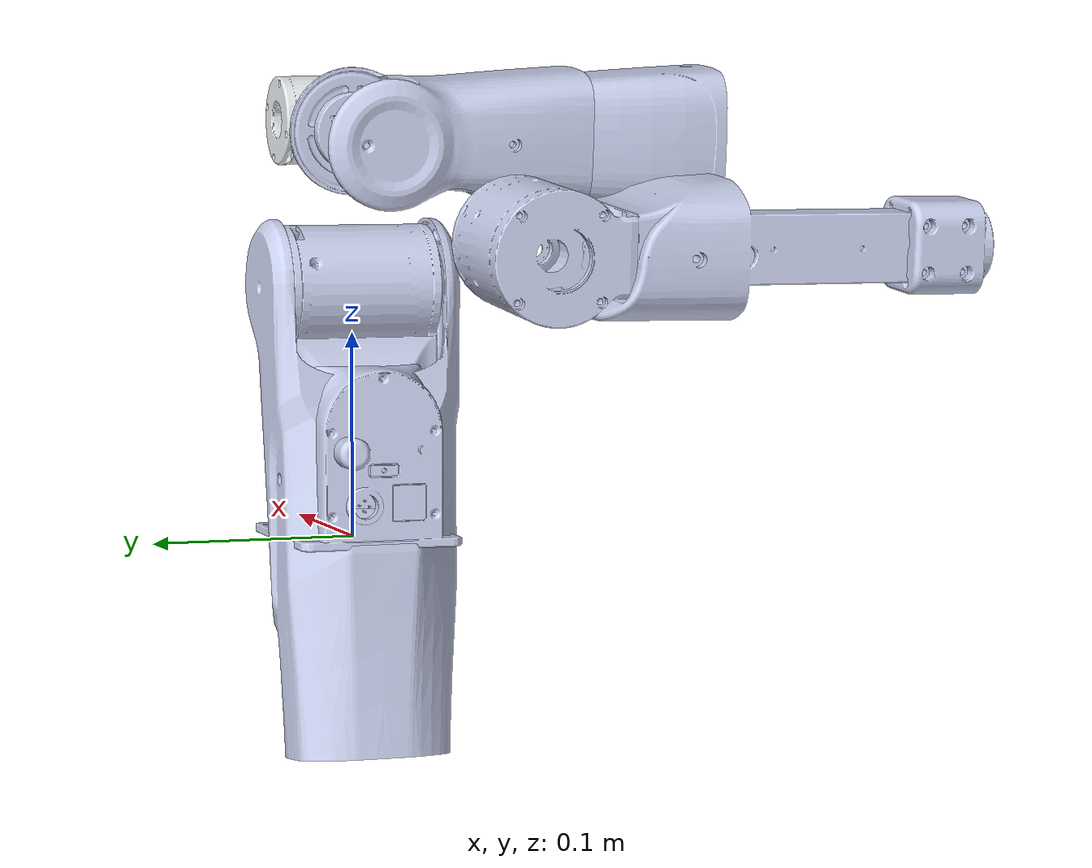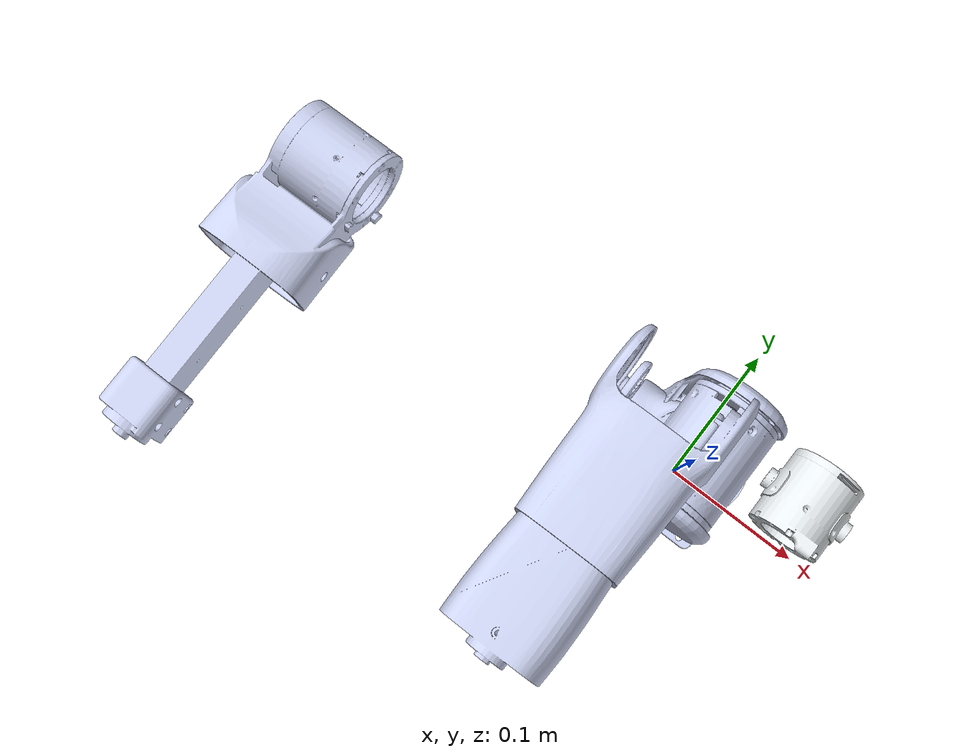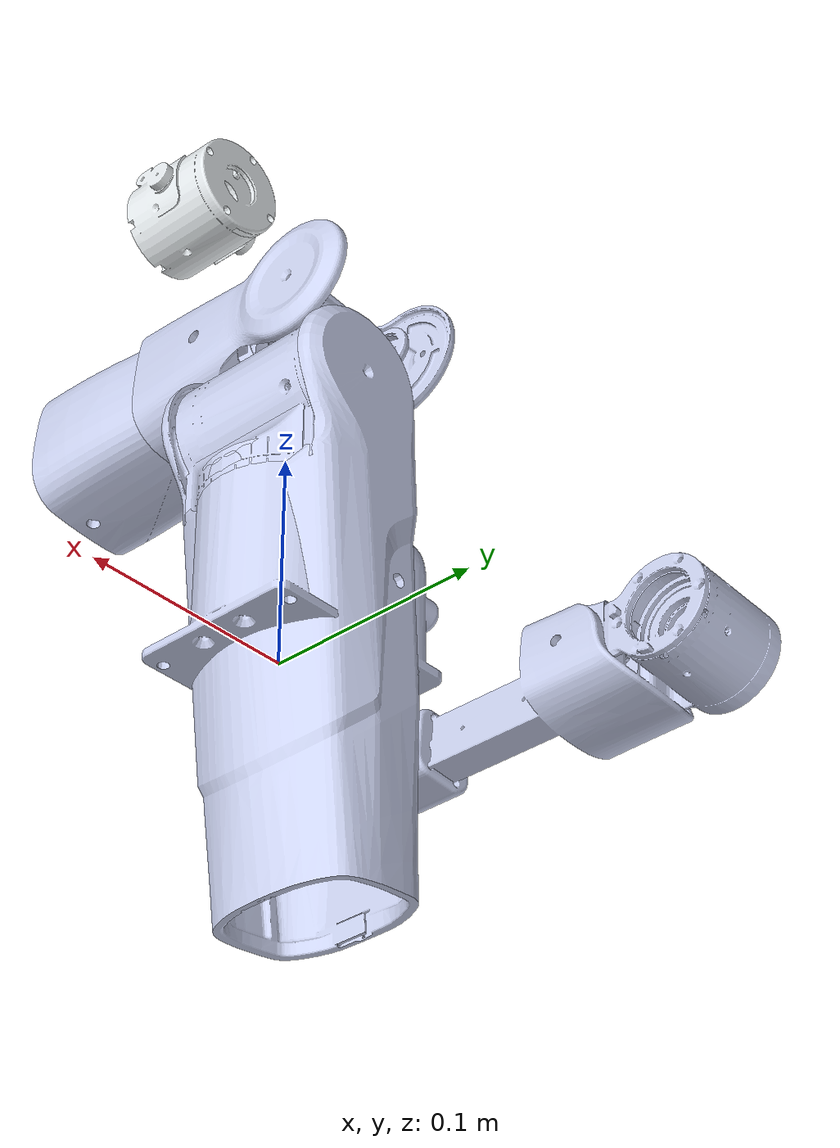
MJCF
<mujoco model="piper_description">
    <compiler angle="radian" />
    <size njmax="500" nconmax="100" />
    <asset>
        <mesh name="base_link" file="../meshes/base_link.STL" />
        <mesh name="link1" file="../meshes/link1.STL" />
        <mesh name="link2" file="../meshes/link2.STL" />
        <mesh name="link3" file="../meshes/link3.STL" />
        <mesh name="link4" file="../meshes/link4.STL" />
        <mesh name="link5" file="../meshes/link5.STL" />
        <mesh name="link6" file="../meshes/link6.STL" />
    </asset>
    <worldbody>
        <geom type="mesh" rgba="0.792157 0.819608 0.933333 1" mesh="base_link" />
        <body name="link1" pos="0 0 0.123">
            <inertial pos="0.000121505 0.000104632 -0.00438597" quat="0.486797 0.49897 -0.50059 0.513292" mass="0.215052" diaginertia="0.000116369 0.00010964 9.9555e-05" />
            <joint name="joint1" pos="0 0 0" axis="0 0 1" limited="true" range="-2.618 2.168" damping="300"/>
            <geom type="mesh" rgba="0.792157 0.819608 0.933333 1" mesh="link1" />
            <body name="link2" pos="0 0 0" quat="0.0356735 -0.0356786 -0.706207 -0.706205">
                <inertial pos="0.198666 -0.0109269 0.00142122" quat="0.0189031 0.705267 -0.0456298 0.707219" mass="0.463914" diaginertia="0.00104423 0.0010069 0.000207486" />
                <joint name="joint2" pos="0 0 0" axis="0 0 1" limited="true" range="0 3.14" damping="100"/>
                <geom type="mesh" rgba="0.792157 0.819608 0.933333 1" mesh="link2" />
                <body name="link3" pos="0.28503 0 0" quat="0.637536 0 0 -0.77042">
                    <inertial pos="-0.0202738 -0.133915 -0.000458683" quat="0.528127 0.491307 -0.505056 0.473938" mass="0.219942" diaginertia="0.000201238 0.000190068 7.08709e-05" />
                    <joint name="joint3" pos="0 0 0" axis="0 0 1" limited="true" range="-2.967 0" damping="20"/>
                    <geom type="mesh" rgba="0.792157 0.819608 0.933333 1" mesh="link3" />
                    <body name="link4" pos="-0.021984 -0.25075 0" quat="0.707105 0.707108 0 0">
                        <inertial pos="-9.66636e-05 0.000876064 -0.00496881" quat="0.512749 0.48584 0.481646 0.518714" mass="0.131814" diaginertia="5.1333e-05 4.14831e-05 3.96892e-05" />
                        <joint name="joint4" pos="0 0 0" axis="0 0 1" limited="true" range="-1.745 1.745" damping="5"/>
                        <geom type="mesh" rgba="0.792157 0.819608 0.933333 1" mesh="link4" />
                        <body name="link5" pos="0 0 0" quat="0.707105 -0.707108 0 0">
                            <inertial pos="-4.10554e-05 -0.0566487 -0.00372058" quat="0.492375 0.506639 0.49332 0.507463" mass="0.134101" diaginertia="5.27778e-05 4.60364e-05 4.10994e-05" />
                            <joint name="joint5" pos="0 0 0" axis="0 0 1" limited="true" range="-1.22 1.22" damping="2"/>
                            <geom type="mesh" rgba="0.792157 0.819608 0.933333 1" mesh="link5" />
                            <body name="link6" pos="8.8259e-05 -0.091 0" quat="0.707105 0.707108 0 0">
                                <inertial pos="-0.000179422 7.72241e-05 0.0305765" quat="0.498967 0.497649 -0.502223 0.501147" mass="0.152309" diaginertia="0.000119759 0.000110059 4.99704e-05" />
                                <joint name="joint6" pos="0 0 0" axis="0 0 1" limited="true" range="-2.0944 2.0944" damping="0.1"/>
                                <geom type="mesh" rgba="0.898039 0.917647 0.929412 1" mesh="link6" />
                            </body>
                        </body>
                    </body>
                </body>
            </body>
        </body>
    </worldbody>
    <actuator>
        <position name="joint1" ctrllimited="true" ctrlrange="-2.618 2.618" joint="joint1" kp="10000" user="1" forcelimited="true" forcerange="-20000 20000"/>
        <position name="joint2" ctrllimited="true" ctrlrange="0 3.14158" joint="joint2" kp="2000" user="1" forcelimited="true" forcerange="-20000 20000"/>
        <position name="joint3" ctrllimited="true" ctrlrange="-2.697 0" joint="joint3" kp="500" user="1" forcelimited="true" forcerange="-1000 1000"/>
        <position name="joint4" ctrllimited="true" ctrlrange="-1.832 1.832" joint="joint4" kp="50" user="1" forcelimited="true" forcerange="-70 70"/>
        <position name="joint5" ctrllimited="true" ctrlrange="-1.22 1.22" joint="joint5" kp="20" user="1" forcelimited="true" forcerange="-50 50"/>
        <position name="joint6" ctrllimited="true" ctrlrange="-3.14158 3.14158" joint="joint6" kp="5" user="1" forcelimited="true" forcerange="-6 6"/>
    </actuator>
</mujoco>
